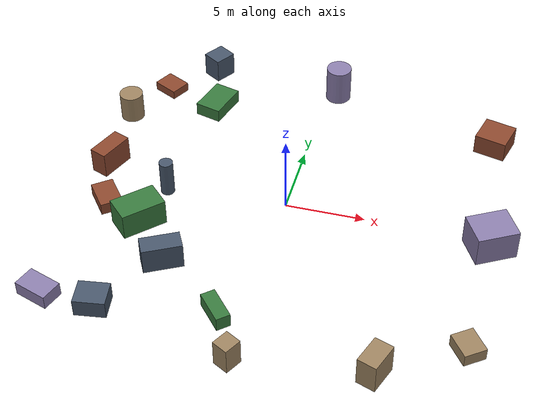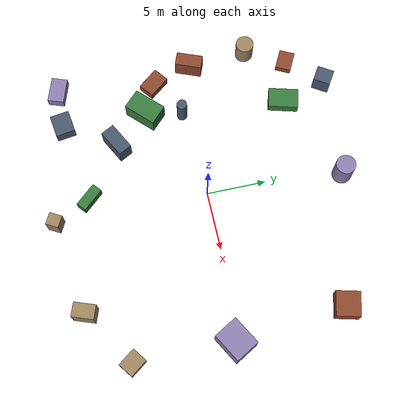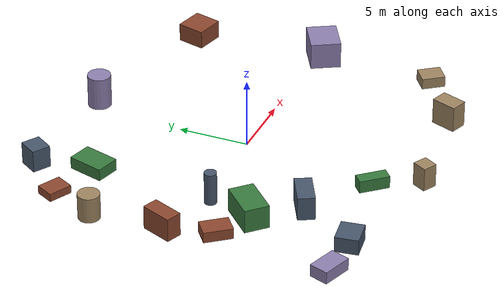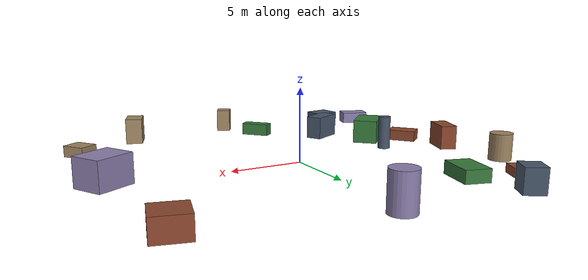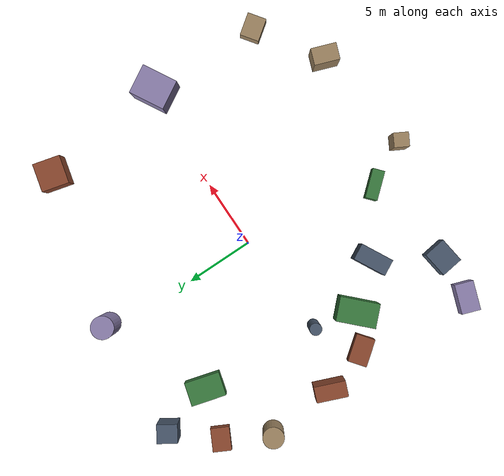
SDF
<sdf version="1.10">
 <world name="robotx_task1_uav_view">
  <gravity>0 0 -9.81</gravity>
  <physics name="physics" type="ode">
   <max_step_size>0.002</max_step_size>
   <real_time_factor>1.0</real_time_factor>
  </physics>
  <scene>
   <ambient>0.18 0.22 0.18 1.0</ambient>
   <background>0.35 0.55 0.40 1.0</background>
   <shadows>true</shadows>
   <grid>false</grid>
  </scene>
  <light name="sun" type="directional">
   <pose>0 0 300 0 0 0</pose>
   <diffuse>0.55 0.75 0.60 1.0</diffuse>
   <specular>0.28 0.45 0.32 1.0</specular>
   <direction>0.20 -0.06 -1.0</direction>
   <attenuation>
    <range>2500</range>
    <constant>0.85</constant>
    <linear>0.001</linear>
    <quadratic>0.00005</quadratic>
   </attenuation>
  </light>
  <plugin filename="gz-sim-physics-system" name="gz::sim::systems::Physics"/>
  <plugin filename="gz-sim-user-commands-system" name="gz::sim::systems::UserCommands"/>
  <plugin filename="gz-sim-scene-broadcaster-system" name="gz::sim::systems::SceneBroadcaster"/>
  <plugin filename="gz-sim-sensors-system" name="gz::sim::systems::Sensors">
   <render_engine>ogre2</render_engine>
  </plugin>
  <model name="scene_clutter_box_000">
   <static>true</static>
   <pose>0.070 -12.905 0.875 0 0 -0.501841</pose>
   <link name="link">
    <visual name="v">
     <geometry><box><size>1.030 1.097 1.710</size></box></geometry>
     <material><ambient>0.45 0.38 0.32 1.0</ambient><diffuse>0.62 0.52 0.38 1.0</diffuse></material>
    </visual>
   </link>
  </model>
  <model name="scene_clutter_box_001">
   <static>true</static>
   <pose>-8.495 -10.889 0.584 0 0 -1.430037</pose>
   <link name="link">
    <visual name="v">
     <geometry><box><size>1.629 1.896 1.127</size></box></geometry>
     <material><ambient>0.18 0.22 0.28 1.0</ambient><diffuse>0.28 0.34 0.42 1.0</diffuse></material>
    </visual>
   </link>
  </model>
  <model name="scene_clutter_box_002">
   <static>true</static>
   <pose>11.795 8.829 0.681 0 0 2.894821</pose>
   <link name="link">
    <visual name="v">
     <geometry><box><size>2.053 1.999 1.322</size></box></geometry>
     <material><ambient>0.35 0.16 0.12 1.0</ambient><diffuse>0.55 0.28 0.18 1.0</diffuse></material>
    </visual>
   </link>
  </model>
  <model name="scene_clutter_box_003">
   <static>true</static>
   <pose>-1.533 -9.805 0.470 0 0 -2.419927</pose>
   <link name="link">
    <visual name="v">
     <geometry><box><size>0.883 2.148 0.899</size></box></geometry>
     <material><ambient>0.12 0.30 0.14 1.0</ambient><diffuse>0.22 0.48 0.24 1.0</diffuse></material>
    </visual>
   </link>
  </model>
  <model name="scene_clutter_cyl_004">
   <static>true</static>
   <pose>0.740 11.535 1.241 0 0 -3.137590</pose>
   <link name="link">
    <visual name="v">
     <geometry><cylinder><radius>0.825</radius><length>2.381</length></cylinder></geometry>
     <material><ambient>0.40 0.35 0.50 1.0</ambient><diffuse>0.55 0.50 0.68 1.0</diffuse></material>
    </visual>
   </link>
  </model>
  <model name="scene_clutter_cyl_005">
   <static>true</static>
   <pose>-12.224 6.039 0.971 0 0 -1.267318</pose>
   <link name="link">
    <visual name="v">
     <geometry><cylinder><radius>0.766</radius><length>1.843</length></cylinder></geometry>
     <material><ambient>0.45 0.38 0.32 1.0</ambient><diffuse>0.62 0.52 0.38 1.0</diffuse></material>
    </visual>
   </link>
  </model>
  <model name="scene_clutter_cyl_006">
   <static>true</static>
   <pose>-7.494 -0.598 1.223 0 0 -0.455062</pose>
   <link name="link">
    <visual name="v">
     <geometry><cylinder><radius>0.432</radius><length>2.346</length></cylinder></geometry>
     <material><ambient>0.18 0.22 0.28 1.0</ambient><diffuse>0.28 0.34 0.42 1.0</diffuse></material>
    </visual>
   </link>
  </model>
  <model name="scene_clutter_box_007">
   <static>true</static>
   <pose>-11.832 0.939 0.870 0 0 -1.949052</pose>
   <link name="link">
    <visual name="v">
     <geometry><box><size>2.268 1.134 1.699</size></box></geometry>
     <material><ambient>0.35 0.16 0.12 1.0</ambient><diffuse>0.55 0.28 0.18 1.0</diffuse></material>
    </visual>
   </link>
  </model>
  <model name="scene_clutter_box_008">
   <static>true</static>
   <pose>-8.280 -3.695 0.873 0 0 0.788595</pose>
   <link name="link">
    <visual name="v">
     <geometry><box><size>2.842 1.763 1.707</size></box></geometry>
     <material><ambient>0.12 0.30 0.14 1.0</ambient><diffuse>0.22 0.48 0.24 1.0</diffuse></material>
    </visual>
   </link>
  </model>
  <model name="scene_clutter_box_009">
   <static>true</static>
   <pose>-11.849 -10.802 0.460 0 0 2.809214</pose>
   <link name="link">
    <visual name="v">
     <geometry><box><size>2.151 1.375 0.881</size></box></geometry>
     <material><ambient>0.40 0.35 0.50 1.0</ambient><diffuse>0.55 0.50 0.68 1.0</diffuse></material>
    </visual>
   </link>
  </model>
  <model name="scene_clutter_box_010">
   <static>true</static>
   <pose>7.969 -11.787 0.958 0 0 2.796280</pose>
   <link name="link">
    <visual name="v">
     <geometry><box><size>1.196 1.839 1.877</size></box></geometry>
     <material><ambient>0.45 0.38 0.32 1.0</ambient><diffuse>0.62 0.52 0.38 1.0</diffuse></material>
    </visual>
   </link>
  </model>
  <model name="scene_clutter_box_011">
   <static>true</static>
   <pose>-7.928 12.107 0.823 0 0 1.007610</pose>
   <link name="link">
    <visual name="v">
     <geometry><box><size>1.470 1.336 1.606</size></box></geometry>
     <material><ambient>0.18 0.22 0.28 1.0</ambient><diffuse>0.28 0.34 0.42 1.0</diffuse></material>
    </visual>
   </link>
  </model>
  <model name="scene_clutter_box_012">
   <static>true</static>
   <pose>-10.565 9.408 0.314 0 0 -0.472717</pose>
   <link name="link">
    <visual name="v">
     <geometry><box><size>1.709 1.351 0.589</size></box></geometry>
     <material><ambient>0.35 0.16 0.12 1.0</ambient><diffuse>0.55 0.28 0.18 1.0</diffuse></material>
    </visual>
   </link>
  </model>
  <model name="scene_clutter_box_013">
   <static>true</static>
   <pose>-6.920 8.301 0.455 0 0 2.875809</pose>
   <link name="link">
    <visual name="v">
     <geometry><box><size>1.722 2.565 0.870</size></box></geometry>
     <material><ambient>0.12 0.30 0.14 1.0</ambient><diffuse>0.22 0.48 0.24 1.0</diffuse></material>
    </visual>
   </link>
  </model>
  <model name="scene_clutter_box_014">
   <static>true</static>
   <pose>12.713 -0.551 0.982 0 0 -2.625074</pose>
   <link name="link">
    <visual name="v">
     <geometry><box><size>2.611 2.160 1.925</size></box></geometry>
     <material><ambient>0.40 0.35 0.50 1.0</ambient><diffuse>0.55 0.50 0.68 1.0</diffuse></material>
    </visual>
   </link>
  </model>
  <model name="scene_clutter_box_015">
   <static>true</static>
   <pose>12.605 -8.835 0.414 0 0 -2.508833</pose>
   <link name="link">
    <visual name="v">
     <geometry><box><size>1.391 1.674 0.789</size></box></geometry>
     <material><ambient>0.45 0.38 0.32 1.0</ambient><diffuse>0.62 0.52 0.38 1.0</diffuse></material>
    </visual>
   </link>
  </model>
  <model name="scene_clutter_box_016">
   <static>true</static>
   <pose>-5.811 -6.636 0.866 0 0 0.487949</pose>
   <link name="link">
    <visual name="v">
     <geometry><box><size>2.447 1.200 1.691</size></box></geometry>
     <material><ambient>0.18 0.22 0.28 1.0</ambient><diffuse>0.28 0.34 0.42 1.0</diffuse></material>
    </visual>
   </link>
  </model>
  <model name="scene_clutter_box_017">
   <static>true</static>
   <pose>-10.828 -2.458 0.408 0 0 2.234444</pose>
   <link name="link">
    <visual name="v">
     <geometry><box><size>2.044 1.387 0.776</size></box></geometry>
     <material><ambient>0.35 0.16 0.12 1.0</ambient><diffuse>0.55 0.28 0.18 1.0</diffuse></material>
    </visual>
   </link>
  </model>
  <model name="uav_dataset_camera">
   <static>false</static>
   <pose>0 0 26 0 0 0</pose>
   <plugin filename="librobotx_overhead_motion_plugin.dylib" name="robotx::OverheadMotionPlugin">
    <radius_x_m>9.93235</radius_x_m>
    <radius_y_m>6.93352</radius_y_m>
    <angular_speed_rad_s>0.068537</angular_speed_rad_s>
    <phase_rad>0.241358</phase_rad>
    <z_wobble_m>0.11648</z_wobble_m>
    <z_wobble_hz>0.06967</z_wobble_hz>
    <z_wobble_phase_rad>5.939200</z_wobble_phase_rad>
   </plugin>
   <link name="camera_link">
    <gravity>false</gravity>
    <sensor name="top_down_rgb" type="camera">
     <always_on>true</always_on>
     <update_rate>20</update_rate>
     <pose>0 0 0 0 1.57079632679 0</pose>
     <camera>
      <horizontal_fov>1.05</horizontal_fov>
      <image><width>1920</width><height>1080</height><format>R8G8B8</format></image>
      <clip><near>0.2</near><far>600</far></clip>
     </camera>
     <topic>/robotx/uav/camera/image_raw</topic>
     <visualize>true</visualize>
    </sensor>
   </link>
  </model>
 </world>
</sdf>
